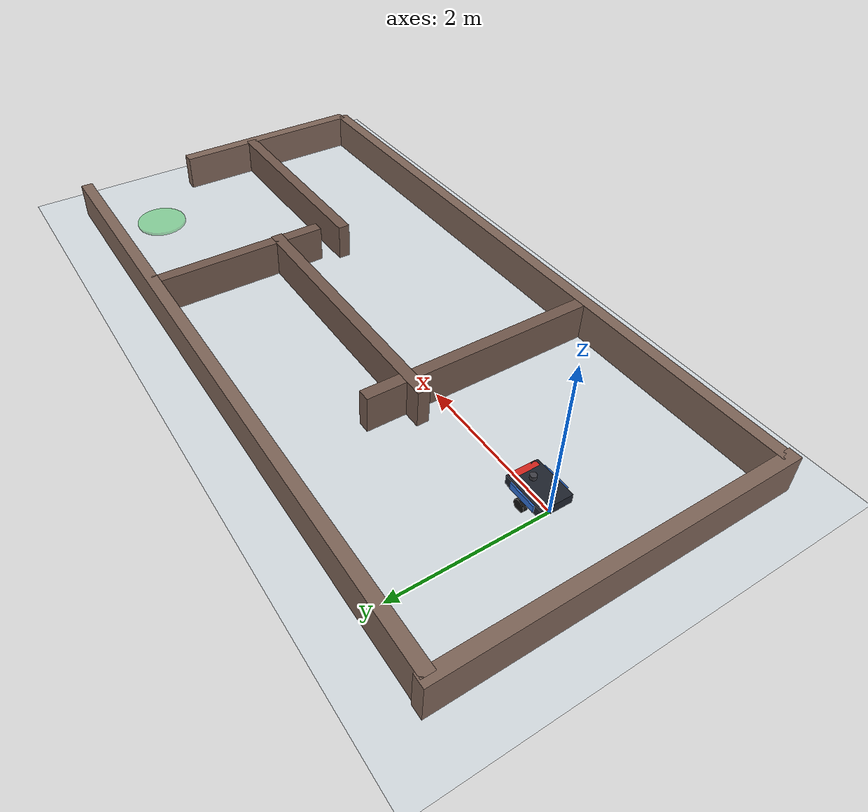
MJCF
<mujoco model="diffdrive_maze">
  <!-- Obstacle maze; exit near (7.2, 1.4). -->
  <compiler angle="radian" balanceinertia="true" autolimits="true"/>
  <option timestep="0.002" gravity="0 0 -9.81" integrator="implicitfast"/>

  <default>
    <geom friction="1 0.5 0.01" rgba="0.7 0.7 0.7 1"/>
  </default>

  <worldbody>
    <light pos="0 0 3" dir="0 0 -1" diffuse="0.8 0.8 0.8"/>
    <geom name="floor" type="plane" size="15 8 0.05" rgba="0.85 0.88 0.9 1" friction="1 0.5 0.01"/>

    <geom name="outer_top" type="box" pos="3.5 2.2 0.25" size="4.5 0.08 0.25" rgba="0.5 0.4 0.35 1"/>
    <geom name="outer_bot" type="box" pos="3.5 -2.2 0.25" size="4.5 0.08 0.25" rgba="0.5 0.4 0.35 1"/>
    <geom name="start_wall" type="box" pos="-1.0 0 0.25" size="0.08 2.3 0.25" rgba="0.5 0.4 0.35 1"/>
    <geom name="end_partial" type="box" pos="8.0 -0.8 0.25" size="0.08 1.4 0.25" rgba="0.5 0.4 0.35 1"/>
    <geom name="mid_block" type="box" pos="2.0 -0.6 0.25" size="0.08 1.6 0.25" rgba="0.45 0.35 0.3 1"/>
    <geom name="horiz_bar" type="box" pos="3.5 0.4 0.25" size="1.8 0.08 0.25" rgba="0.45 0.35 0.3 1"/>
    <geom name="mid_vert" type="box" pos="5.2 1.0 0.25" size="0.08 1.2 0.25" rgba="0.45 0.35 0.3 1"/>
    <geom name="lower_bar" type="box" pos="6.5 -0.5 0.25" size="1.5 0.08 0.25" rgba="0.45 0.35 0.3 1"/>
    <geom name="exit_marker" type="cylinder" size="0.35 0.02" pos="7.2 1.4 0.02" rgba="0.2 0.8 0.3 0.45" contype="0" conaffinity="0"/>

    <body name="base" pos="0.2 0 0.05">
      <freejoint name="root"/>
      <geom name="chassis" type="box" size="0.275 0.21 0.06" pos="0 0 0.11" mass="8.0" rgba="0.12 0.14 0.18 1" group="1" contype="1" conaffinity="1"/>
      <geom name="armor_front" type="box" size="0.04 0.18 0.05" pos="0.24 0 0.12" mass="0.3" rgba="0.85 0.15 0.12 1" group="1" contype="0" conaffinity="0"/>
      <geom name="armor_rear" type="box" size="0.03 0.16 0.045" pos="-0.24 0 0.12" mass="0.2" rgba="0.85 0.15 0.12 1" group="1" contype="0" conaffinity="0"/>
      <geom name="armor_left" type="box" size="0.18 0.03 0.045" pos="0 0.20 0.12" mass="0.2" rgba="0.2 0.45 0.85 1" group="1" contype="0" conaffinity="0"/>
      <geom name="armor_right" type="box" size="0.18 0.03 0.045" pos="0 -0.20 0.12" mass="0.2" rgba="0.2 0.45 0.85 1" group="1" contype="0" conaffinity="0"/>
      <geom name="lidar_mount" type="cylinder" size="0.04 0.025" pos="0.10 0 0.20" mass="0.08" rgba="0.25 0.25 0.28 1" contype="0" conaffinity="0" group="1"/>
      <body name="left_wheel" pos="0 0.22 0">
        <joint name="left_wheel_joint" type="hinge" axis="0 1 0" damping="0.12"/>
        <geom name="left_wheel_geom" type="cylinder" size="0.075 0.03" quat="0.7071 0.7071 0 0" mass="0.6" rgba="0.08 0.08 0.08 1" friction="1.5 0.5 0.01" group="1" contype="0" conaffinity="0"/>
      </body>
      <body name="right_wheel" pos="0 -0.22 0">
        <joint name="right_wheel_joint" type="hinge" axis="0 1 0" damping="0.12"/>
        <geom name="right_wheel_geom" type="cylinder" size="0.075 0.03" quat="0.7071 0.7071 0 0" mass="0.6" rgba="0.08 0.08 0.08 1" friction="1.5 0.5 0.01" group="1" contype="0" conaffinity="0"/>
      </body>
    </body>
  </worldbody>
</mujoco>
